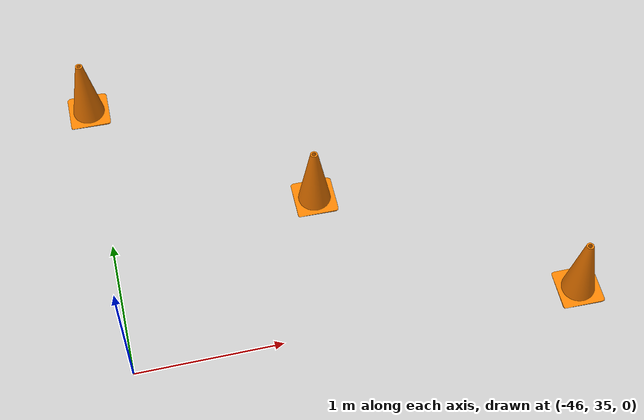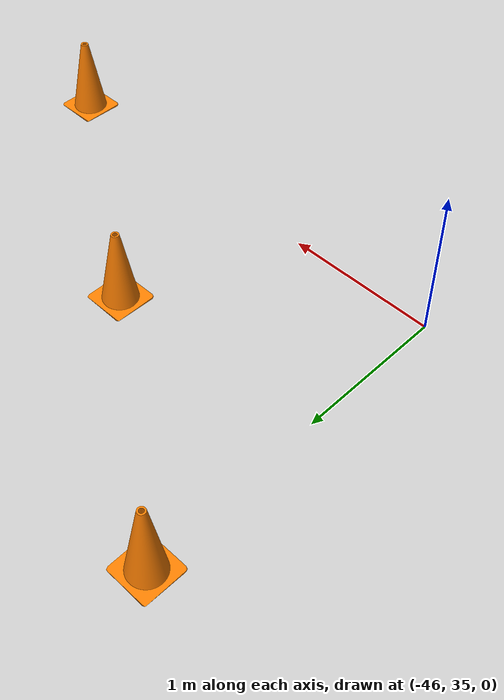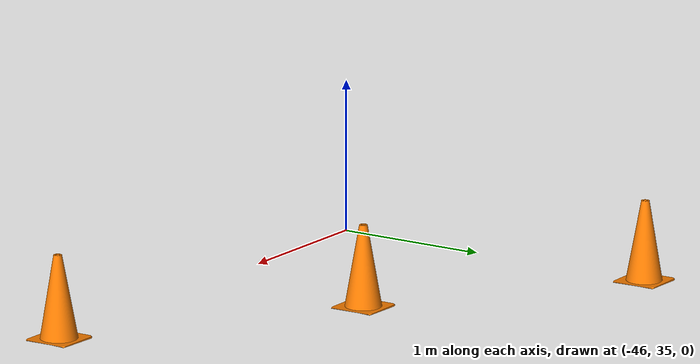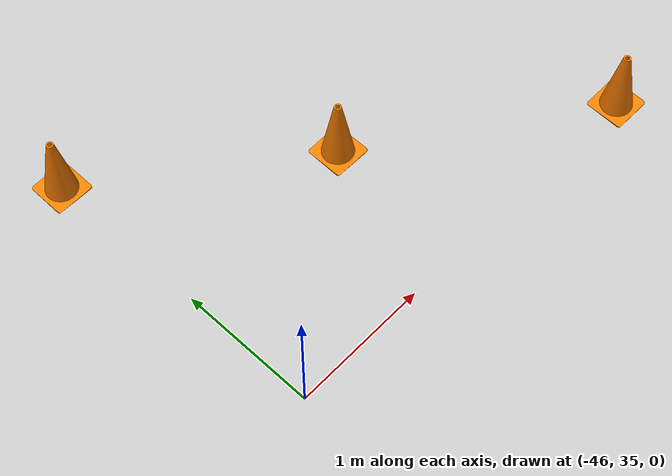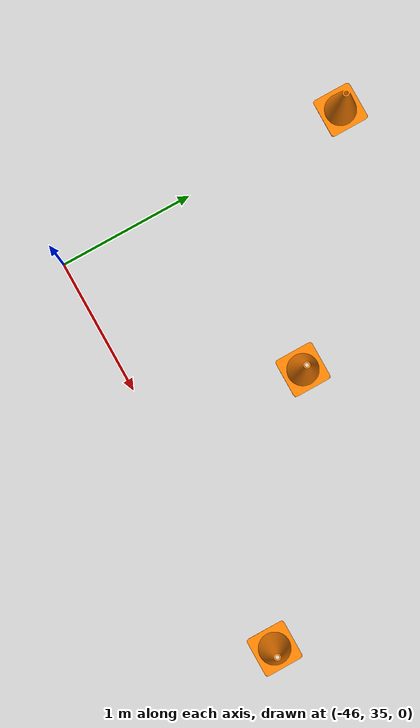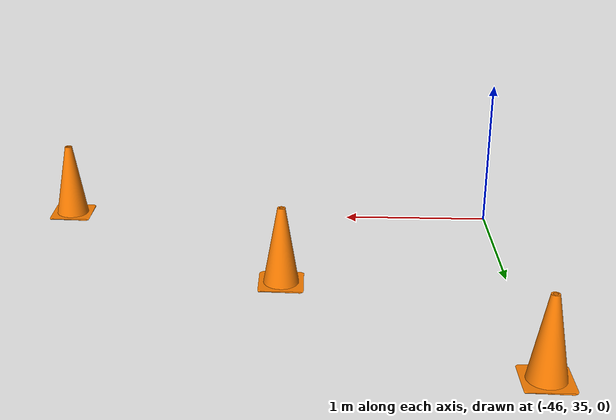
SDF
<sdf version="1.7">
 <world name="IARRC Urban">
  <model name="TallerCone_clone_119">
   <link name="link_0">
    <inertial>
     <mass>0.068</mass>
     <inertia>
      <ixx>0.000367263</ixx>
      <ixy>0</ixy>
      <ixz>0</ixz>
      <iyy>0.000367263</iyy>
      <iyz>0</iyz>
      <izz>0.000165927</izz>
     </inertia>
    </inertial>
    <visual name="visual">
     <geometry><mesh><uri>model://TallerCone/traffic_cone.stl</uri><scale>0.01 0.01 0.01</scale></mesh></geometry>
     <material>
      <lighting>1</lighting>
      <script><uri>file://media/materials/scripts/gazebo.material</uri><name>Gazebo/Grey</name></script>
      <ambient>0.4 0.2 0 1</ambient>
      <diffuse>1 0.5 0 1</diffuse>
      <specular>0.01 0.01 0.01 1</specular>
      <emissive>0 0 0 1</emissive>
     </material>
    </visual>
    <collision name="collision">
     <geometry><mesh><uri>model://TallerCone/traffic_cone.stl</uri></mesh></geometry>
     <surface>
      <friction>
       <ode><mu>1</mu><mu2>1</mu2><fdir1>0 0 0</fdir1><slip1>0</slip1><slip2>0</slip2></ode>
       <torsional>
        <coefficient>1</coefficient>
        <patch_radius>0</patch_radius>
        <surface_radius>0</surface_radius>
        <use_patch_radius>1</use_patch_radius>
        <ode><slip>0</slip></ode>
       </torsional>
      </friction>
      <bounce><restitution_coefficient>0</restitution_coefficient><threshold>1e+06</threshold></bounce>
      <contact>
       <collide_without_contact>0</collide_without_contact>
       <collide_without_contact_bitmask>1</collide_without_contact_bitmask>
       <collide_bitmask>1</collide_bitmask>
       <ode>
        <soft_cfm>0</soft_cfm>
        <soft_erp>0.2</soft_erp>
        <kp>1e+13</kp>
        <kd>1</kd>
        <max_vel>0.01</max_vel>
        <min_depth>0</min_depth>
       </ode>
       <bullet>
        <split_impulse>1</split_impulse>
        <split_impulse_penetration_threshold>-0.01</split_impulse_penetration_threshold>
        <soft_cfm>0</soft_cfm>
        <soft_erp>0.2</soft_erp>
        <kp>1e+13</kp>
        <kd>1</kd>
       </bullet>
      </contact>
     </surface>
    </collision>
   </link>
   <static>1</static>
   <pose>-46.0131 37.221 -0.034283 0 -0 0</pose>
  </model>
  <model name="TallerCone_clone_120">
   <link name="link_0">
    <inertial>
     <mass>0.068</mass>
     <inertia>
      <ixx>0.000367263</ixx>
      <ixy>0</ixy>
      <ixz>0</ixz>
      <iyy>0.000367263</iyy>
      <iyz>0</iyz>
      <izz>0.000165927</izz>
     </inertia>
    </inertial>
    <visual name="visual">
     <geometry><mesh><uri>model://TallerCone/traffic_cone.stl</uri><scale>0.01 0.01 0.01</scale></mesh></geometry>
     <material>
      <lighting>1</lighting>
      <script><uri>file://media/materials/scripts/gazebo.material</uri><name>Gazebo/Grey</name></script>
      <ambient>0.4 0.2 0 1</ambient>
      <diffuse>1 0.5 0 1</diffuse>
      <specular>0.01 0.01 0.01 1</specular>
      <emissive>0 0 0 1</emissive>
     </material>
    </visual>
    <collision name="collision">
     <geometry><mesh><uri>model://TallerCone/traffic_cone.stl</uri></mesh></geometry>
     <surface>
      <friction>
       <ode><mu>1</mu><mu2>1</mu2><fdir1>0 0 0</fdir1><slip1>0</slip1><slip2>0</slip2></ode>
       <torsional>
        <coefficient>1</coefficient>
        <patch_radius>0</patch_radius>
        <surface_radius>0</surface_radius>
        <use_patch_radius>1</use_patch_radius>
        <ode><slip>0</slip></ode>
       </torsional>
      </friction>
      <bounce><restitution_coefficient>0</restitution_coefficient><threshold>1e+06</threshold></bounce>
      <contact>
       <collide_without_contact>0</collide_without_contact>
       <collide_without_contact_bitmask>1</collide_without_contact_bitmask>
       <collide_bitmask>1</collide_bitmask>
       <ode>
        <soft_cfm>0</soft_cfm>
        <soft_erp>0.2</soft_erp>
        <kp>1e+13</kp>
        <kd>1</kd>
        <max_vel>0.01</max_vel>
        <min_depth>0</min_depth>
       </ode>
       <bullet>
        <split_impulse>1</split_impulse>
        <split_impulse_penetration_threshold>-0.01</split_impulse_penetration_threshold>
        <soft_cfm>0</soft_cfm>
        <soft_erp>0.2</soft_erp>
        <kp>1e+13</kp>
        <kd>1</kd>
       </bullet>
      </contact>
     </surface>
    </collision>
   </link>
   <static>1</static>
   <pose>-44.5511 36.0967 -0.034283 0 -0 0</pose>
  </model>
  <model name="TallerCone_clone_121">
   <link name="link_0">
    <inertial>
     <mass>0.068</mass>
     <inertia>
      <ixx>0.000367263</ixx>
      <ixy>0</ixy>
      <ixz>0</ixz>
      <iyy>0.000367263</iyy>
      <iyz>0</iyz>
      <izz>0.000165927</izz>
     </inertia>
    </inertial>
    <visual name="visual">
     <geometry><mesh><uri>model://TallerCone/traffic_cone.stl</uri><scale>0.01 0.01 0.01</scale></mesh></geometry>
     <material>
      <lighting>1</lighting>
      <script><uri>file://media/materials/scripts/gazebo.material</uri><name>Gazebo/Grey</name></script>
      <ambient>0.4 0.2 0 1</ambient>
      <diffuse>1 0.5 0 1</diffuse>
      <specular>0.01 0.01 0.01 1</specular>
      <emissive>0 0 0 1</emissive>
     </material>
    </visual>
    <collision name="collision">
     <geometry><mesh><uri>model://TallerCone/traffic_cone.stl</uri></mesh></geometry>
     <surface>
      <friction>
       <ode><mu>1</mu><mu2>1</mu2><fdir1>0 0 0</fdir1><slip1>0</slip1><slip2>0</slip2></ode>
       <torsional>
        <coefficient>1</coefficient>
        <patch_radius>0</patch_radius>
        <surface_radius>0</surface_radius>
        <use_patch_radius>1</use_patch_radius>
        <ode><slip>0</slip></ode>
       </torsional>
      </friction>
      <bounce><restitution_coefficient>0</restitution_coefficient><threshold>1e+06</threshold></bounce>
      <contact>
       <collide_without_contact>0</collide_without_contact>
       <collide_without_contact_bitmask>1</collide_without_contact_bitmask>
       <collide_bitmask>1</collide_bitmask>
       <ode>
        <soft_cfm>0</soft_cfm>
        <soft_erp>0.2</soft_erp>
        <kp>1e+13</kp>
        <kd>1</kd>
        <max_vel>0.01</max_vel>
        <min_depth>0</min_depth>
       </ode>
       <bullet>
        <split_impulse>1</split_impulse>
        <split_impulse_penetration_threshold>-0.01</split_impulse_penetration_threshold>
        <soft_cfm>0</soft_cfm>
        <soft_erp>0.2</soft_erp>
        <kp>1e+13</kp>
        <kd>1</kd>
       </bullet>
      </contact>
     </surface>
    </collision>
   </link>
   <static>1</static>
   <pose>-42.9696 34.9839 -0.034283 0 -0 0</pose>
  </model>
 </world>
</sdf>
